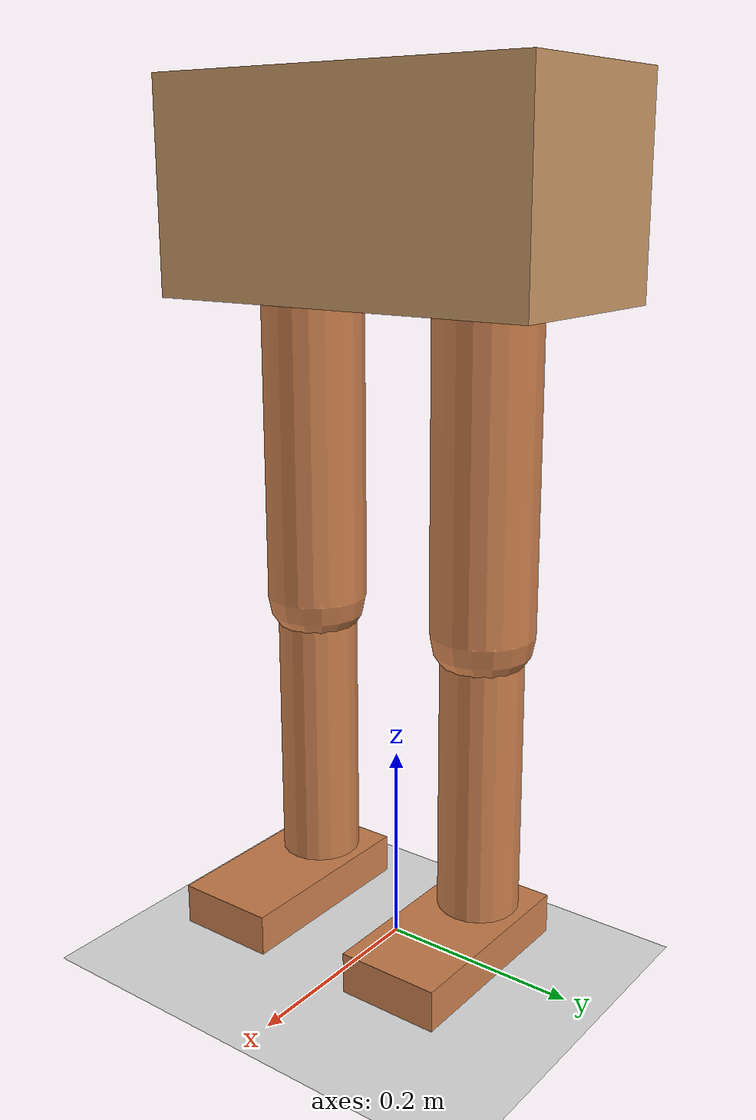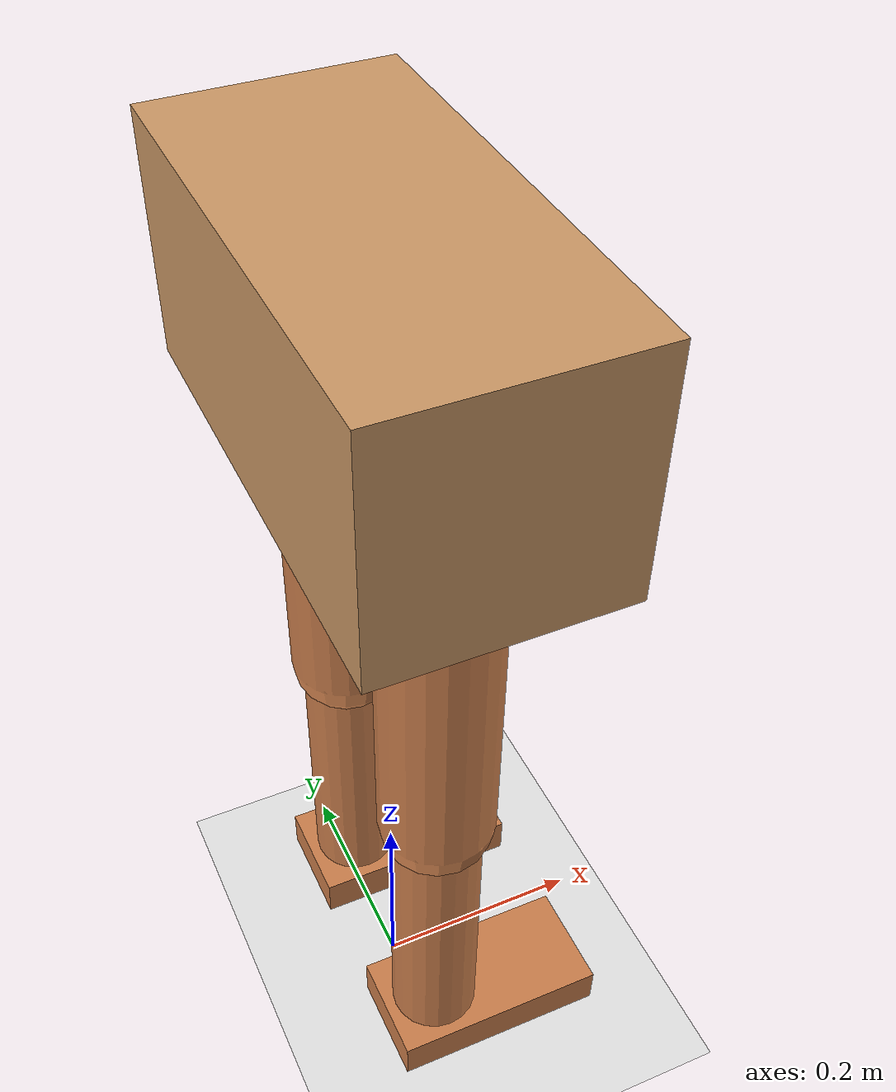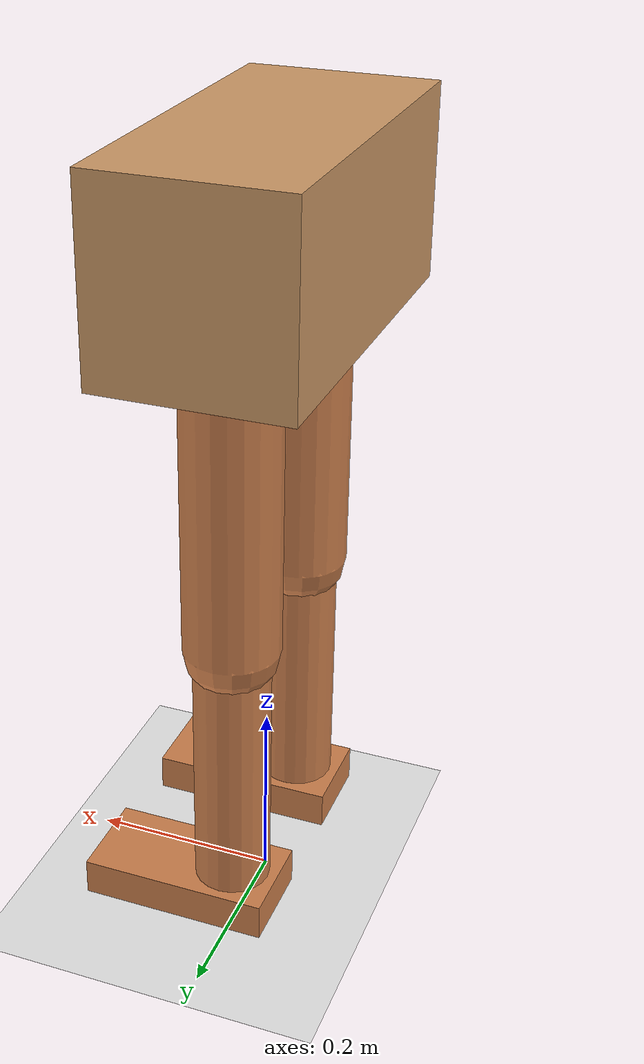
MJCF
<mujoco model="bipedal_robot">
    <option gravity="0 0 -9.81" integrator="RK4" timestep="0.01" />

    <default>
        <joint damping="0.1" />
        <motor ctrlrange="-1 1" ctrllimited="true" />
    </default>

    <worldbody>
        <light diffuse=".5 .5 .5" pos="0 0 3" dir="0 0 -1" />
        <geom type="plane" size="10 10 0.1" rgba=".9 .9 .9 1" />

        <body name="torso" pos="0 0 0.75">
            <joint name="root" type="free" />
            <geom type="box" size="0.1 0.2 0.1" rgba="0.8 0.6 0.4 1" mass = "0.5"/>

            <body name="right_thigh" pos="0 -0.1 -0.1">
                <joint name="right_hip_flex" type="hinge" axis="0 1 0" range="-45 45" />
                <joint name="right_hip_roll" type="hinge" axis="1 0 0" range="-15 15" />
                <geom type="capsule" size="0.05" fromto="0 0 0 0 0 -0.3" rgba="0.8 0.5 0.3 1" mass = "1"/>
                <body name="right_shin" pos="0 0 -0.3">
                    <joint name="right_knee" type="hinge" axis="0 1 0" range="0 90" />
                    <geom type="capsule" size="0.04" fromto="0 0 0 0 0 -0.3" rgba="0.8 0.5 0.3 1" mass = "1"/>
                    <body name="right_foot" pos="0 0 -0.3">
                        <joint name="right_ankle" type="hinge" axis="0 1 0" range="-45 45" />
                        <geom type="box" size="0.1 0.05 0.02" pos="0.05 0 0" rgba="0.8 0.5 0.3 1" mass = "0.5"/>
                    </body>
                </body>
            </body>

            <body name="left_thigh" pos="0 0.1 -0.1">
                <joint name="left_hip_flex" type="hinge" axis="0 1 0" range="-45 45" />
                <joint name="left_hip_roll" type="hinge" axis="1 0 0" range="-15 15" />
                <geom type="capsule" size="0.05" fromto="0 0 0 0 0 -0.3" rgba="0.8 0.5 0.3 1" mass = "1"/>
                <body name="left_shin" pos="0 0 -0.3">
                    <joint name="left_knee" type="hinge" axis="0 1 0" range="0 90" />
                    <geom type="capsule" size="0.04" fromto="0 0 0 0 0 -0.3" rgba="0.8 0.5 0.3 1" mass = "1"/>
                    <body name="left_foot" pos="0 0 -0.3">
                        <joint name="left_ankle" type="hinge" axis="0 1 0" range="-45 45" />
                        <geom type="box" size="0.1 0.05 0.02" pos="0.05 0 0" rgba="0.8 0.5 0.3 1" mass = "0.5"/>
                    </body>
                </body>
            </body>
        </body>
    </worldbody>

    <actuator>1
        <motor joint="right_hip_flex" name="right_hip_flex_motor" gear="9" />
        <motor joint="right_hip_roll" name="right_hip_roll_motor" gear="3" />
        <motor joint="right_knee" name="right_knee_motor" gear="9" />
        <motor joint="right_ankle" name="right_ankle_motor" gear="3" />
        <motor joint="left_hip_flex" name="left_hip_flex_motor" gear="9" />
        <motor joint="left_hip_roll" name="left_hip_roll_motor" gear="3" />
        <motor joint="left_knee" name="left_knee_motor" gear="9" />
        <motor joint="left_ankle" name="left_ankle_motor" gear="3" />
    </actuator>
</mujoco>
